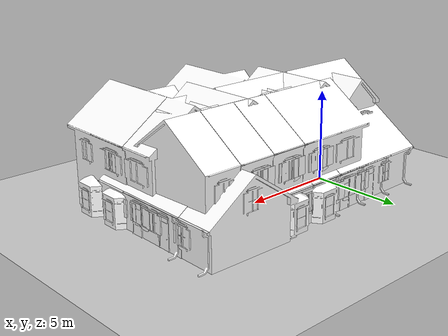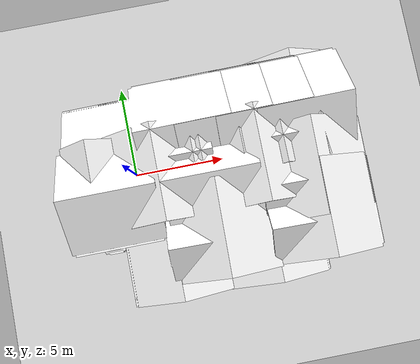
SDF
<sdf version="1.6">
 <world name="default">
  <model name="ground_plane">
   <static>1</static>
   <link name="link">
    <collision name="collision">
     <geometry><plane><normal>0 0 1</normal><size>100 100</size></plane></geometry>
     <surface><friction><ode><mu>100</mu><mu2>50</mu2></ode></friction></surface>
    </collision>
    <visual name="visual">
     <cast_shadows>0</cast_shadows>
     <geometry><plane><normal>0 0 1</normal><size>100 100</size></plane></geometry>
     <material>
      <script><uri>file://media/materials/scripts/gazebo.material</uri><name>Gazebo/Grey</name></script>
     </material>
    </visual>
   </link>
  </model>
  <model name="Ev1">
   <link name="link">
    <inertial>
     <mass>1</mass>
     <inertia><ixx>1</ixx><ixy>0</ixy><ixz>0</ixz><iyy>1</iyy><iyz>0</iyz><izz>1</izz></inertia>
    </inertial>
    <visual name="visual">
     <geometry><mesh><uri>model://house_3/meshes/house_3.dae</uri><scale>1 1 1</scale></mesh></geometry>
     <material>
      <script>
       <uri>model://house_3/materials/scripts</uri>
       <uri>model://house_3/materials/textures</uri>
       <name>House_3/Diffuse</name>
      </script>
      <ambient>1 1 1 1</ambient>
      <diffuse>1 1 1 1</diffuse>
      <specular>0 0 0 1</specular>
      <emissive>0 0 0 1</emissive>
      <shader type="vertex"><normal_map>__default__</normal_map></shader>
     </material>
    </visual>
    <collision name="collision">
     <geometry>
      <mesh><uri>/home/dgknrsln/.gazebo/models/house_3/meshes/house_3.dae</uri><scale>1 1 1</scale></mesh>
     </geometry>
     <surface>
      <friction>
       <ode><mu>1</mu><mu2>1</mu2><fdir1>0 0 0</fdir1><slip1>0</slip1><slip2>0</slip2></ode>
       <torsional>
        <coefficient>1</coefficient>
        <patch_radius>0</patch_radius>
        <surface_radius>0</surface_radius>
        <use_patch_radius>1</use_patch_radius>
        <ode><slip>0</slip></ode>
       </torsional>
      </friction>
      <bounce><restitution_coefficient>0</restitution_coefficient><threshold>1e+06</threshold></bounce>
      <contact>
       <collide_without_contact>0</collide_without_contact>
       <collide_without_contact_bitmask>1</collide_without_contact_bitmask>
       <collide_bitmask>1</collide_bitmask>
       <ode>
        <soft_cfm>0</soft_cfm>
        <soft_erp>0.2</soft_erp>
        <kp>1e+13</kp>
        <kd>1</kd>
        <max_vel>0.01</max_vel>
        <min_depth>0</min_depth>
       </ode>
       <bullet>
        <split_impulse>1</split_impulse>
        <split_impulse_penetration_threshold>-0.01</split_impulse_penetration_threshold>
        <soft_cfm>0</soft_cfm>
        <soft_erp>0.2</soft_erp>
        <kp>1e+13</kp>
        <kd>1</kd>
       </bullet>
      </contact>
     </surface>
    </collision>
   </link>
   <static>1</static>
   <pose>1.45043 -1.26813 0 0 -0 0</pose>
  </model>
  <model name="Ev1_clone">
   <link name="link">
    <inertial>
     <mass>1</mass>
     <inertia><ixx>1</ixx><ixy>0</ixy><ixz>0</ixz><iyy>1</iyy><iyz>0</iyz><izz>1</izz></inertia>
    </inertial>
    <visual name="visual">
     <geometry><mesh><uri>model://house_3/meshes/house_3.dae</uri><scale>1 1 1</scale></mesh></geometry>
     <material>
      <script>
       <uri>model://house_3/materials/scripts</uri>
       <uri>model://house_3/materials/textures</uri>
       <name>House_3/Diffuse</name>
      </script>
      <ambient>1 1 1 1</ambient>
      <diffuse>1 1 1 1</diffuse>
      <specular>0 0 0 1</specular>
      <emissive>0 0 0 1</emissive>
      <shader type="vertex"><normal_map>__default__</normal_map></shader>
     </material>
    </visual>
    <collision name="collision">
     <geometry>
      <mesh><uri>/home/dgknrsln/.gazebo/models/house_3/meshes/house_3.dae</uri><scale>1 1 1</scale></mesh>
     </geometry>
     <surface>
      <friction>
       <ode><mu>1</mu><mu2>1</mu2><fdir1>0 0 0</fdir1><slip1>0</slip1><slip2>0</slip2></ode>
       <torsional>
        <coefficient>1</coefficient>
        <patch_radius>0</patch_radius>
        <surface_radius>0</surface_radius>
        <use_patch_radius>1</use_patch_radius>
        <ode><slip>0</slip></ode>
       </torsional>
      </friction>
      <bounce><restitution_coefficient>0</restitution_coefficient><threshold>1e+06</threshold></bounce>
      <contact>
       <collide_without_contact>0</collide_without_contact>
       <collide_without_contact_bitmask>1</collide_without_contact_bitmask>
       <collide_bitmask>1</collide_bitmask>
       <ode>
        <soft_cfm>0</soft_cfm>
        <soft_erp>0.2</soft_erp>
        <kp>1e+13</kp>
        <kd>1</kd>
        <max_vel>0.01</max_vel>
        <min_depth>0</min_depth>
       </ode>
       <bullet>
        <split_impulse>1</split_impulse>
        <split_impulse_penetration_threshold>-0.01</split_impulse_penetration_threshold>
        <soft_cfm>0</soft_cfm>
        <soft_erp>0.2</soft_erp>
        <kp>1e+13</kp>
        <kd>1</kd>
       </bullet>
      </contact>
     </surface>
    </collision>
   </link>
   <static>1</static>
   <pose>0.935104 1.25172 0 0 0 -3.13049</pose>
  </model>
  <model name="Ev1_clone_0">
   <link name="link">
    <inertial>
     <mass>1</mass>
     <inertia><ixx>1</ixx><ixy>0</ixy><ixz>0</ixz><iyy>1</iyy><iyz>0</iyz><izz>1</izz></inertia>
    </inertial>
    <visual name="visual">
     <geometry><mesh><uri>model://house_3/meshes/house_3.dae</uri><scale>1 1 1</scale></mesh></geometry>
     <material>
      <script>
       <uri>model://house_3/materials/scripts</uri>
       <uri>model://house_3/materials/textures</uri>
       <name>House_3/Diffuse</name>
      </script>
      <ambient>1 1 1 1</ambient>
      <diffuse>1 1 1 1</diffuse>
      <specular>0 0 0 1</specular>
      <emissive>0 0 0 1</emissive>
      <shader type="vertex"><normal_map>__default__</normal_map></shader>
     </material>
    </visual>
    <collision name="collision">
     <geometry>
      <mesh><uri>/home/dgknrsln/.gazebo/models/house_3/meshes/house_3.dae</uri><scale>1 1 1</scale></mesh>
     </geometry>
     <surface>
      <friction>
       <ode><mu>1</mu><mu2>1</mu2><fdir1>0 0 0</fdir1><slip1>0</slip1><slip2>0</slip2></ode>
       <torsional>
        <coefficient>1</coefficient>
        <patch_radius>0</patch_radius>
        <surface_radius>0</surface_radius>
        <use_patch_radius>1</use_patch_radius>
        <ode><slip>0</slip></ode>
       </torsional>
      </friction>
      <bounce><restitution_coefficient>0</restitution_coefficient><threshold>1e+06</threshold></bounce>
      <contact>
       <collide_without_contact>0</collide_without_contact>
       <collide_without_contact_bitmask>1</collide_without_contact_bitmask>
       <collide_bitmask>1</collide_bitmask>
       <ode>
        <soft_cfm>0</soft_cfm>
        <soft_erp>0.2</soft_erp>
        <kp>1e+13</kp>
        <kd>1</kd>
        <max_vel>0.01</max_vel>
        <min_depth>0</min_depth>
       </ode>
       <bullet>
        <split_impulse>1</split_impulse>
        <split_impulse_penetration_threshold>-0.01</split_impulse_penetration_threshold>
        <soft_cfm>0</soft_cfm>
        <soft_erp>0.2</soft_erp>
        <kp>1e+13</kp>
        <kd>1</kd>
       </bullet>
      </contact>
     </surface>
    </collision>
   </link>
   <static>1</static>
   <pose>4.287 -1.55404 0 0 -0 1.55613</pose>
  </model>
  <model name="Ev1_clone_1">
   <link name="link">
    <inertial>
     <mass>1</mass>
     <inertia><ixx>1</ixx><ixy>0</ixy><ixz>0</ixz><iyy>1</iyy><iyz>0</iyz><izz>1</izz></inertia>
    </inertial>
    <visual name="visual">
     <geometry><mesh><uri>model://house_3/meshes/house_3.dae</uri><scale>1 1 1</scale></mesh></geometry>
     <material>
      <script>
       <uri>model://house_3/materials/scripts</uri>
       <uri>model://house_3/materials/textures</uri>
       <name>House_3/Diffuse</name>
      </script>
      <ambient>1 1 1 1</ambient>
      <diffuse>1 1 1 1</diffuse>
      <specular>0 0 0 1</specular>
      <emissive>0 0 0 1</emissive>
      <shader type="vertex"><normal_map>__default__</normal_map></shader>
     </material>
    </visual>
    <collision name="collision">
     <geometry>
      <mesh><uri>/home/dgknrsln/.gazebo/models/house_3/meshes/house_3.dae</uri><scale>1 1 1</scale></mesh>
     </geometry>
     <surface>
      <friction>
       <ode><mu>1</mu><mu2>1</mu2><fdir1>0 0 0</fdir1><slip1>0</slip1><slip2>0</slip2></ode>
       <torsional>
        <coefficient>1</coefficient>
        <patch_radius>0</patch_radius>
        <surface_radius>0</surface_radius>
        <use_patch_radius>1</use_patch_radius>
        <ode><slip>0</slip></ode>
       </torsional>
      </friction>
      <bounce><restitution_coefficient>0</restitution_coefficient><threshold>1e+06</threshold></bounce>
      <contact>
       <collide_without_contact>0</collide_without_contact>
       <collide_without_contact_bitmask>1</collide_without_contact_bitmask>
       <collide_bitmask>1</collide_bitmask>
       <ode>
        <soft_cfm>0</soft_cfm>
        <soft_erp>0.2</soft_erp>
        <kp>1e+13</kp>
        <kd>1</kd>
        <max_vel>0.01</max_vel>
        <min_depth>0</min_depth>
       </ode>
       <bullet>
        <split_impulse>1</split_impulse>
        <split_impulse_penetration_threshold>-0.01</split_impulse_penetration_threshold>
        <soft_cfm>0</soft_cfm>
        <soft_erp>0.2</soft_erp>
        <kp>1e+13</kp>
        <kd>1</kd>
       </bullet>
      </contact>
     </surface>
    </collision>
   </link>
   <static>1</static>
   <pose>6.46598 -1.26579 0 0 -0 0</pose>
  </model>
  <model name="Ev1_clone_clone">
   <link name="link">
    <inertial>
     <mass>1</mass>
     <inertia><ixx>1</ixx><ixy>0</ixy><ixz>0</ixz><iyy>1</iyy><iyz>0</iyz><izz>1</izz></inertia>
    </inertial>
    <visual name="visual">
     <geometry><mesh><uri>model://house_3/meshes/house_3.dae</uri><scale>1 1 1</scale></mesh></geometry>
     <material>
      <script>
       <uri>model://house_3/materials/scripts</uri>
       <uri>model://house_3/materials/textures</uri>
       <name>House_3/Diffuse</name>
      </script>
      <ambient>1 1 1 1</ambient>
      <diffuse>1 1 1 1</diffuse>
      <specular>0 0 0 1</specular>
      <emissive>0 0 0 1</emissive>
      <shader type="vertex"><normal_map>__default__</normal_map></shader>
     </material>
    </visual>
    <collision name="collision">
     <geometry>
      <mesh><uri>/home/dgknrsln/.gazebo/models/house_3/meshes/house_3.dae</uri><scale>1 1 1</scale></mesh>
     </geometry>
     <surface>
      <friction>
       <ode><mu>1</mu><mu2>1</mu2><fdir1>0 0 0</fdir1><slip1>0</slip1><slip2>0</slip2></ode>
       <torsional>
        <coefficient>1</coefficient>
        <patch_radius>0</patch_radius>
        <surface_radius>0</surface_radius>
        <use_patch_radius>1</use_patch_radius>
        <ode><slip>0</slip></ode>
       </torsional>
      </friction>
      <bounce><restitution_coefficient>0</restitution_coefficient><threshold>1e+06</threshold></bounce>
      <contact>
       <collide_without_contact>0</collide_without_contact>
       <collide_without_contact_bitmask>1</collide_without_contact_bitmask>
       <collide_bitmask>1</collide_bitmask>
       <ode>
        <soft_cfm>0</soft_cfm>
        <soft_erp>0.2</soft_erp>
        <kp>1e+13</kp>
        <kd>1</kd>
        <max_vel>0.01</max_vel>
        <min_depth>0</min_depth>
       </ode>
       <bullet>
        <split_impulse>1</split_impulse>
        <split_impulse_penetration_threshold>-0.01</split_impulse_penetration_threshold>
        <soft_cfm>0</soft_cfm>
        <soft_erp>0.2</soft_erp>
        <kp>1e+13</kp>
        <kd>1</kd>
       </bullet>
      </contact>
     </surface>
    </collision>
   </link>
   <static>1</static>
   <pose>2.93582 1.26062 0 0 0 -3.13049</pose>
  </model>
  <model name="Ev1_clone_clone_clone">
   <link name="link">
    <inertial>
     <mass>1</mass>
     <inertia><ixx>1</ixx><ixy>0</ixy><ixz>0</ixz><iyy>1</iyy><iyz>0</iyz><izz>1</izz></inertia>
    </inertial>
    <visual name="visual">
     <geometry><mesh><uri>model://house_3/meshes/house_3.dae</uri><scale>1 1 1</scale></mesh></geometry>
     <material>
      <script>
       <uri>model://house_3/materials/scripts</uri>
       <uri>model://house_3/materials/textures</uri>
       <name>House_3/Diffuse</name>
      </script>
      <ambient>1 1 1 1</ambient>
      <diffuse>1 1 1 1</diffuse>
      <specular>0 0 0 1</specular>
      <emissive>0 0 0 1</emissive>
      <shader type="vertex"><normal_map>__default__</normal_map></shader>
     </material>
    </visual>
    <collision name="collision">
     <geometry>
      <mesh><uri>/home/dgknrsln/.gazebo/models/house_3/meshes/house_3.dae</uri><scale>1 1 1</scale></mesh>
     </geometry>
     <surface>
      <friction>
       <ode><mu>1</mu><mu2>1</mu2><fdir1>0 0 0</fdir1><slip1>0</slip1><slip2>0</slip2></ode>
       <torsional>
        <coefficient>1</coefficient>
        <patch_radius>0</patch_radius>
        <surface_radius>0</surface_radius>
        <use_patch_radius>1</use_patch_radius>
        <ode><slip>0</slip></ode>
       </torsional>
      </friction>
      <bounce><restitution_coefficient>0</restitution_coefficient><threshold>1e+06</threshold></bounce>
      <contact>
       <collide_without_contact>0</collide_without_contact>
       <collide_without_contact_bitmask>1</collide_without_contact_bitmask>
       <collide_bitmask>1</collide_bitmask>
       <ode>
        <soft_cfm>0</soft_cfm>
        <soft_erp>0.2</soft_erp>
        <kp>1e+13</kp>
        <kd>1</kd>
        <max_vel>0.01</max_vel>
        <min_depth>0</min_depth>
       </ode>
       <bullet>
        <split_impulse>1</split_impulse>
        <split_impulse_penetration_threshold>-0.01</split_impulse_penetration_threshold>
        <soft_cfm>0</soft_cfm>
        <soft_erp>0.2</soft_erp>
        <kp>1e+13</kp>
        <kd>1</kd>
       </bullet>
      </contact>
     </surface>
    </collision>
   </link>
   <static>1</static>
   <pose>4.93586 1.25974 0 0 0 -3.13049</pose>
  </model>
  <model name="Ev1_clone_clone_clone_0">
   <link name="link">
    <inertial>
     <mass>1</mass>
     <inertia><ixx>1</ixx><ixy>0</ixy><ixz>0</ixz><iyy>1</iyy><iyz>0</iyz><izz>1</izz></inertia>
    </inertial>
    <visual name="visual">
     <geometry><mesh><uri>model://house_3/meshes/house_3.dae</uri><scale>1 1 1</scale></mesh></geometry>
     <material>
      <script>
       <uri>model://house_3/materials/scripts</uri>
       <uri>model://house_3/materials/textures</uri>
       <name>House_3/Diffuse</name>
      </script>
      <ambient>1 1 1 1</ambient>
      <diffuse>1 1 1 1</diffuse>
      <specular>0 0 0 1</specular>
      <emissive>0 0 0 1</emissive>
      <shader type="vertex"><normal_map>__default__</normal_map></shader>
     </material>
    </visual>
    <collision name="collision">
     <geometry>
      <mesh><uri>/home/dgknrsln/.gazebo/models/house_3/meshes/house_3.dae</uri><scale>1 1 1</scale></mesh>
     </geometry>
     <surface>
      <friction>
       <ode><mu>1</mu><mu2>1</mu2><fdir1>0 0 0</fdir1><slip1>0</slip1><slip2>0</slip2></ode>
       <torsional>
        <coefficient>1</coefficient>
        <patch_radius>0</patch_radius>
        <surface_radius>0</surface_radius>
        <use_patch_radius>1</use_patch_radius>
        <ode><slip>0</slip></ode>
       </torsional>
      </friction>
      <bounce><restitution_coefficient>0</restitution_coefficient><threshold>1e+06</threshold></bounce>
      <contact>
       <collide_without_contact>0</collide_without_contact>
       <collide_without_contact_bitmask>1</collide_without_contact_bitmask>
       <collide_bitmask>1</collide_bitmask>
       <ode>
        <soft_cfm>0</soft_cfm>
        <soft_erp>0.2</soft_erp>
        <kp>1e+13</kp>
        <kd>1</kd>
        <max_vel>0.01</max_vel>
        <min_depth>0</min_depth>
       </ode>
       <bullet>
        <split_impulse>1</split_impulse>
        <split_impulse_penetration_threshold>-0.01</split_impulse_penetration_threshold>
        <soft_cfm>0</soft_cfm>
        <soft_erp>0.2</soft_erp>
        <kp>1e+13</kp>
        <kd>1</kd>
       </bullet>
      </contact>
     </surface>
    </collision>
   </link>
   <static>1</static>
   <pose>6.93264 1.25679 0 0 0 -3.13049</pose>
  </model>
  <model name="Ev1_clone_0_clone">
   <link name="link">
    <inertial>
     <mass>1</mass>
     <inertia><ixx>1</ixx><ixy>0</ixy><ixz>0</ixz><iyy>1</iyy><iyz>0</iyz><izz>1</izz></inertia>
    </inertial>
    <visual name="visual">
     <geometry><mesh><uri>model://house_3/meshes/house_3.dae</uri><scale>1 1 1</scale></mesh></geometry>
     <material>
      <script>
       <uri>model://house_3/materials/scripts</uri>
       <uri>model://house_3/materials/textures</uri>
       <name>House_3/Diffuse</name>
      </script>
      <ambient>1 1 1 1</ambient>
      <diffuse>1 1 1 1</diffuse>
      <specular>0 0 0 1</specular>
      <emissive>0 0 0 1</emissive>
      <shader type="vertex"><normal_map>__default__</normal_map></shader>
     </material>
    </visual>
    <collision name="collision">
     <geometry>
      <mesh><uri>/home/dgknrsln/.gazebo/models/house_3/meshes/house_3.dae</uri><scale>1 1 1</scale></mesh>
     </geometry>
     <surface>
      <friction>
       <ode><mu>1</mu><mu2>1</mu2><fdir1>0 0 0</fdir1><slip1>0</slip1><slip2>0</slip2></ode>
       <torsional>
        <coefficient>1</coefficient>
        <patch_radius>0</patch_radius>
        <surface_radius>0</surface_radius>
        <use_patch_radius>1</use_patch_radius>
        <ode><slip>0</slip></ode>
       </torsional>
      </friction>
      <bounce><restitution_coefficient>0</restitution_coefficient><threshold>1e+06</threshold></bounce>
      <contact>
       <collide_without_contact>0</collide_without_contact>
       <collide_without_contact_bitmask>1</collide_without_contact_bitmask>
       <collide_bitmask>1</collide_bitmask>
       <ode>
        <soft_cfm>0</soft_cfm>
        <soft_erp>0.2</soft_erp>
        <kp>1e+13</kp>
        <kd>1</kd>
        <max_vel>0.01</max_vel>
        <min_depth>0</min_depth>
       </ode>
       <bullet>
        <split_impulse>1</split_impulse>
        <split_impulse_penetration_threshold>-0.01</split_impulse_penetration_threshold>
        <soft_cfm>0</soft_cfm>
        <soft_erp>0.2</soft_erp>
        <kp>1e+13</kp>
        <kd>1</kd>
       </bullet>
      </contact>
     </surface>
    </collision>
   </link>
   <static>1</static>
   <pose>9.28561 0.475127 0 0 -0 1.55613</pose>
  </model>
  <model name="Ev1_clone_0_clone_clone">
   <link name="link">
    <inertial>
     <mass>1</mass>
     <inertia><ixx>1</ixx><ixy>0</ixy><ixz>0</ixz><iyy>1</iyy><iyz>0</iyz><izz>1</izz></inertia>
    </inertial>
    <visual name="visual">
     <geometry><mesh><uri>model://house_3/meshes/house_3.dae</uri><scale>1 1 1</scale></mesh></geometry>
     <material>
      <script>
       <uri>model://house_3/materials/scripts</uri>
       <uri>model://house_3/materials/textures</uri>
       <name>House_3/Diffuse</name>
      </script>
      <ambient>1 1 1 1</ambient>
      <diffuse>1 1 1 1</diffuse>
      <specular>0 0 0 1</specular>
      <emissive>0 0 0 1</emissive>
      <shader type="vertex"><normal_map>__default__</normal_map></shader>
     </material>
    </visual>
    <collision name="collision">
     <geometry>
      <mesh><uri>/home/dgknrsln/.gazebo/models/house_3/meshes/house_3.dae</uri><scale>1 1 1</scale></mesh>
     </geometry>
     <surface>
      <friction>
       <ode><mu>1</mu><mu2>1</mu2><fdir1>0 0 0</fdir1><slip1>0</slip1><slip2>0</slip2></ode>
       <torsional>
        <coefficient>1</coefficient>
        <patch_radius>0</patch_radius>
        <surface_radius>0</surface_radius>
        <use_patch_radius>1</use_patch_radius>
        <ode><slip>0</slip></ode>
       </torsional>
      </friction>
      <bounce><restitution_coefficient>0</restitution_coefficient><threshold>1e+06</threshold></bounce>
      <contact>
       <collide_without_contact>0</collide_without_contact>
       <collide_without_contact_bitmask>1</collide_without_contact_bitmask>
       <collide_bitmask>1</collide_bitmask>
       <ode>
        <soft_cfm>0</soft_cfm>
        <soft_erp>0.2</soft_erp>
        <kp>1e+13</kp>
        <kd>1</kd>
        <max_vel>0.01</max_vel>
        <min_depth>0</min_depth>
       </ode>
       <bullet>
        <split_impulse>1</split_impulse>
        <split_impulse_penetration_threshold>-0.01</split_impulse_penetration_threshold>
        <soft_cfm>0</soft_cfm>
        <soft_erp>0.2</soft_erp>
        <kp>1e+13</kp>
        <kd>1</kd>
       </bullet>
      </contact>
     </surface>
    </collision>
   </link>
   <static>1</static>
   <pose>9.2867 -1.54827 0 0 -0 1.55613</pose>
  </model>
  <model name="Ev1_clone_0_clone_clone_0">
   <link name="link">
    <inertial>
     <mass>1</mass>
     <inertia><ixx>1</ixx><ixy>0</ixy><ixz>0</ixz><iyy>1</iyy><iyz>0</iyz><izz>1</izz></inertia>
    </inertial>
    <visual name="visual">
     <geometry><mesh><uri>model://house_3/meshes/house_3.dae</uri><scale>1 1 1</scale></mesh></geometry>
     <material>
      <script>
       <uri>model://house_3/materials/scripts</uri>
       <uri>model://house_3/materials/textures</uri>
       <name>House_3/Diffuse</name>
      </script>
      <ambient>1 1 1 1</ambient>
      <diffuse>1 1 1 1</diffuse>
      <specular>0 0 0 1</specular>
      <emissive>0 0 0 1</emissive>
      <shader type="vertex"><normal_map>__default__</normal_map></shader>
     </material>
    </visual>
    <collision name="collision">
     <geometry>
      <mesh><uri>/home/dgknrsln/.gazebo/models/house_3/meshes/house_3.dae</uri><scale>1 1 1</scale></mesh>
     </geometry>
     <surface>
      <friction>
       <ode><mu>1</mu><mu2>1</mu2><fdir1>0 0 0</fdir1><slip1>0</slip1><slip2>0</slip2></ode>
       <torsional>
        <coefficient>1</coefficient>
        <patch_radius>0</patch_radius>
        <surface_radius>0</surface_radius>
        <use_patch_radius>1</use_patch_radius>
        <ode><slip>0</slip></ode>
       </torsional>
      </friction>
      <bounce><restitution_coefficient>0</restitution_coefficient><threshold>1e+06</threshold></bounce>
      <contact>
       <collide_without_contact>0</collide_without_contact>
       <collide_without_contact_bitmask>1</collide_without_contact_bitmask>
       <collide_bitmask>1</collide_bitmask>
       <ode>
        <soft_cfm>0</soft_cfm>
        <soft_erp>0.2</soft_erp>
        <kp>1e+13</kp>
        <kd>1</kd>
        <max_vel>0.01</max_vel>
        <min_depth>0</min_depth>
       </ode>
       <bullet>
        <split_impulse>1</split_impulse>
        <split_impulse_penetration_threshold>-0.01</split_impulse_penetration_threshold>
        <soft_cfm>0</soft_cfm>
        <soft_erp>0.2</soft_erp>
        <kp>1e+13</kp>
        <kd>1</kd>
       </bullet>
      </contact>
     </surface>
    </collision>
   </link>
   <static>1</static>
   <pose>6.73542 -3.07593 0 0 0 -1.56767</pose>
  </model>
  <model name="Ev1_clone_0_clone_clone_0_clone_clone">
   <link name="link">
    <inertial>
     <mass>1</mass>
     <inertia><ixx>1</ixx><ixy>0</ixy><ixz>0</ixz><iyy>1</iyy><iyz>0</iyz><izz>1</izz></inertia>
    </inertial>
    <visual name="visual">
     <geometry><mesh><uri>model://house_3/meshes/house_3.dae</uri><scale>1 1 1</scale></mesh></geometry>
     <material>
      <script>
       <uri>model://house_3/materials/scripts</uri>
       <uri>model://house_3/materials/textures</uri>
       <name>House_3/Diffuse</name>
      </script>
      <ambient>1 1 1 1</ambient>
      <diffuse>1 1 1 1</diffuse>
      <specular>0 0 0 1</specular>
      <emissive>0 0 0 1</emissive>
      <shader type="vertex"><normal_map>__default__</normal_map></shader>
     </material>
    </visual>
    <collision name="collision">
     <geometry>
      <mesh><uri>/home/dgknrsln/.gazebo/models/house_3/meshes/house_3.dae</uri><scale>1 1 1</scale></mesh>
     </geometry>
     <surface>
      <friction>
       <ode><mu>1</mu><mu2>1</mu2><fdir1>0 0 0</fdir1><slip1>0</slip1><slip2>0</slip2></ode>
       <torsional>
        <coefficient>1</coefficient>
        <patch_radius>0</patch_radius>
        <surface_radius>0</surface_radius>
        <use_patch_radius>1</use_patch_radius>
        <ode><slip>0</slip></ode>
       </torsional>
      </friction>
      <bounce><restitution_coefficient>0</restitution_coefficient><threshold>1e+06</threshold></bounce>
      <contact>
       <collide_without_contact>0</collide_without_contact>
       <collide_without_contact_bitmask>1</collide_without_contact_bitmask>
       <collide_bitmask>1</collide_bitmask>
       <ode>
        <soft_cfm>0</soft_cfm>
        <soft_erp>0.2</soft_erp>
        <kp>1e+13</kp>
        <kd>1</kd>
        <max_vel>0.01</max_vel>
        <min_depth>0</min_depth>
       </ode>
       <bullet>
        <split_impulse>1</split_impulse>
        <split_impulse_penetration_threshold>-0.01</split_impulse_penetration_threshold>
        <soft_cfm>0</soft_cfm>
        <soft_erp>0.2</soft_erp>
        <kp>1e+13</kp>
        <kd>1</kd>
       </bullet>
      </contact>
     </surface>
    </collision>
   </link>
   <static>1</static>
   <pose>1.73307 -3.06616 0 0 0 -1.56767</pose>
  </model>
 </world>
</sdf>
